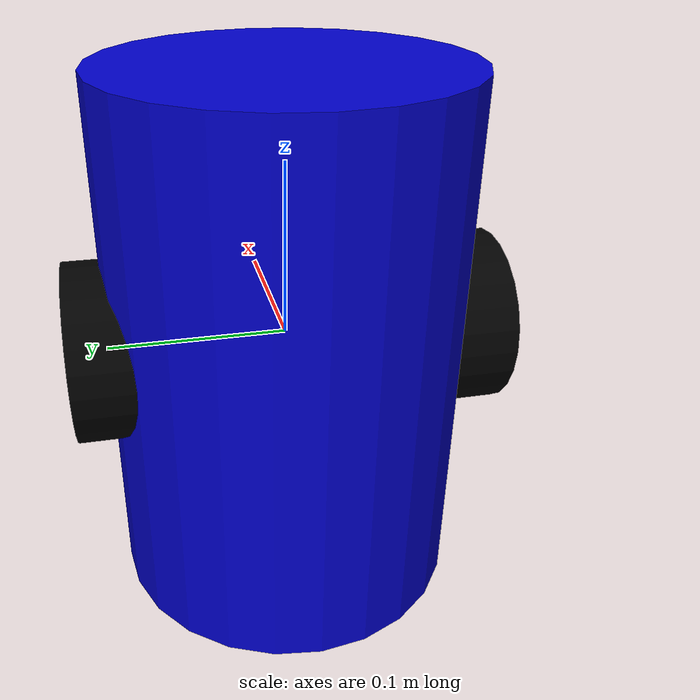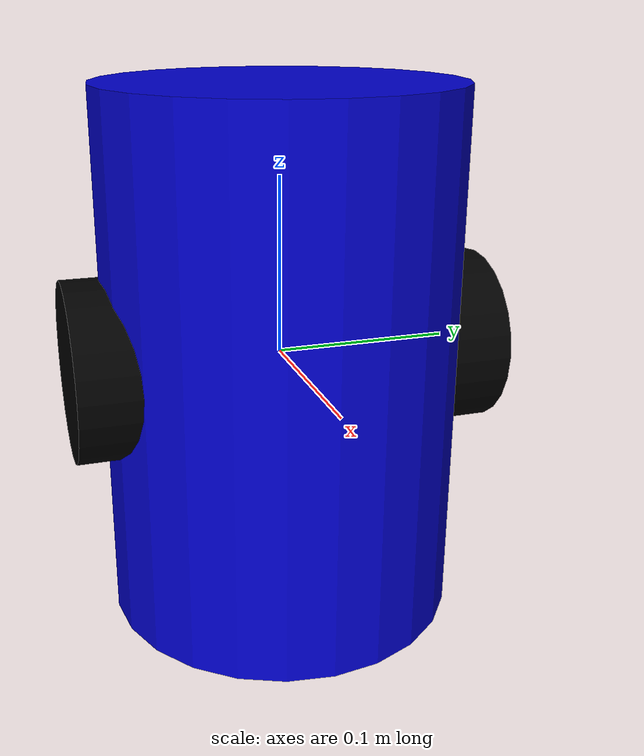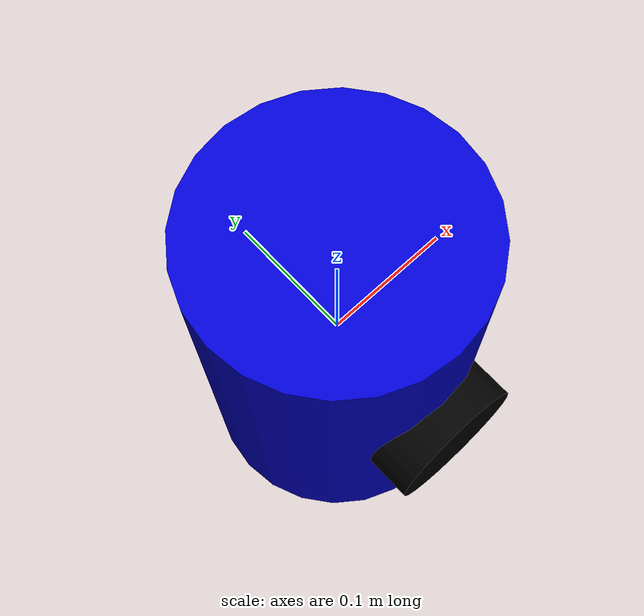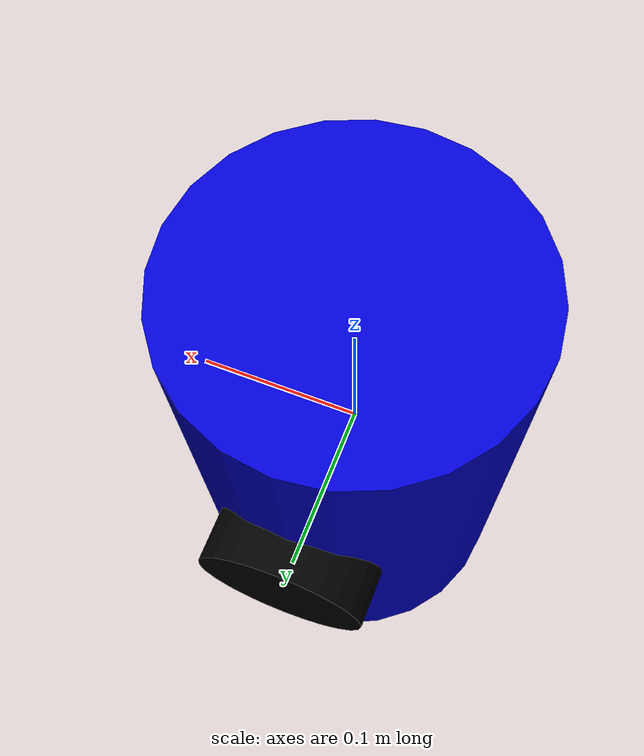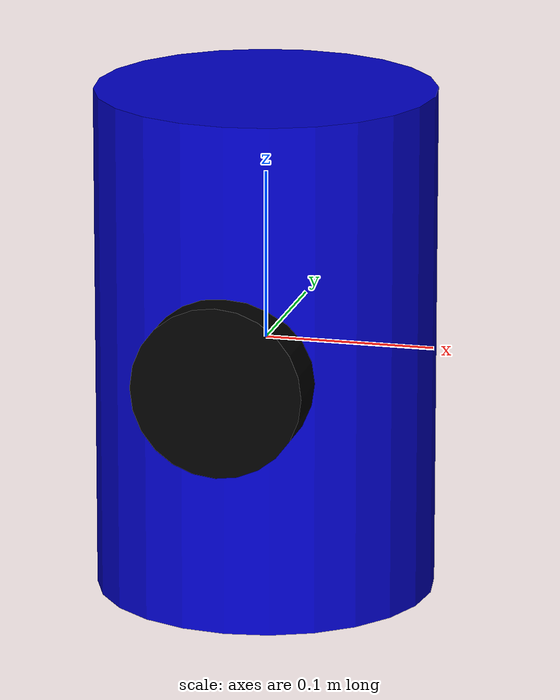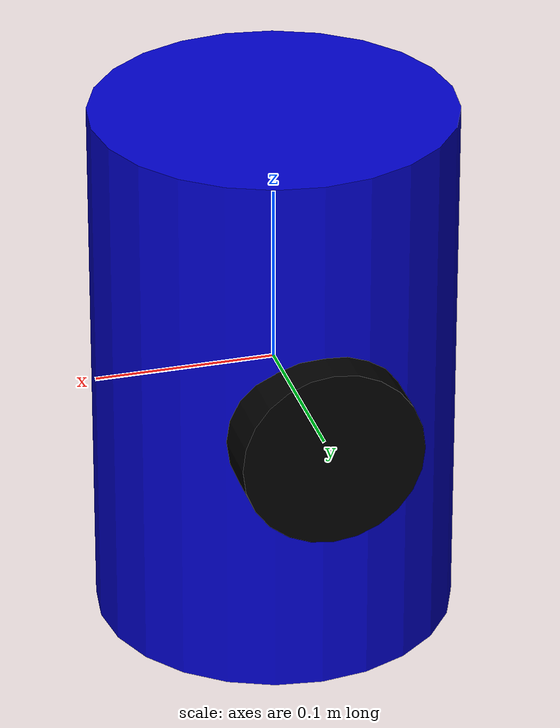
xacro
<?xml version="1.0"?>
<!-- | simple robot testing                                                            | -->
<robot xmlns:xacro="http://www.ros.org/wiki/xacro" name="simple_robot">

  <xacro:arg name="robot_name" default="robot"/>
  <xacro:arg name="robot_color" default="Blue"/>

  <!-- Robot properties -->
  <xacro:property name="robot_radius" value="0.1"/>
  <xacro:property name="robot_length" value="0.3"/>
  <xacro:property name="wheel_radius" value="0.05"/>
  <xacro:property name="wheel_thickness" value="0.04"/>
  <xacro:property name="wheel_separation" value="0.2"/>
  <xacro:property name="mass_chassis" value="1.0"/>
  <xacro:property name="mass_wheel" value="0.2"/>

  <!-- Colors -->
  <material name="Blue">
    <color rgba="0 0 0.8 1"/>
  </material>
  <material name="Red">
    <color rgba="0.8 0 0 1"/>
  </material>
  <material name="Green">
    <color rgba="0 0.8 0 1"/>
  </material>
  <material name="Yellow">
    <color rgba="0.8 0.8 0 1"/>
  </material>
  <material name="Black">
    <color rgba="0 0 0 1"/>
  </material>

  <!-- Base Link -->
  <link name="$(arg robot_name)/base_link">
    <visual>
      <geometry>
        <cylinder length="${robot_length}" radius="${robot_radius}"/>
      </geometry>
      <material name="$(arg robot_color)"/>
    </visual>
    <collision>
      <geometry>
        <cylinder length="${robot_length}" radius="${robot_radius}"/>
      </geometry>
    </collision>
    <inertial>
      <mass value="${mass_chassis}"/>
      <inertia ixx="${mass_chassis * (3 * robot_radius * robot_radius + robot_length * robot_length) / 12}"
               ixy="0.0" ixz="0.0"
               iyy="${mass_chassis * (3 * robot_radius * robot_radius + robot_length * robot_length) / 12}"
               iyz="0.0"
               izz="${mass_chassis * robot_radius * robot_radius / 2}"/>
    </inertial>
  </link>

  <!-- Left Wheel Link -->
  <link name="$(arg robot_name)/wheel_left_link">
    <visual>
      <geometry>
        <cylinder length="${wheel_thickness}" radius="${wheel_radius}"/>
      </geometry>
      <material name="Black"/>
    </visual>
    <collision>
      <geometry>
        <cylinder length="${wheel_thickness}" radius="${wheel_radius}"/>
      </geometry>
    </collision>
    <inertial>
      <mass value="${mass_wheel}"/>
      <inertia ixx="${mass_wheel * (3 * wheel_radius * wheel_radius + wheel_thickness * wheel_thickness) / 12}"
               ixy="0.0" ixz="0.0"
               iyy="${mass_wheel * (3 * wheel_radius * wheel_radius + wheel_thickness * wheel_thickness) / 12}"
               iyz="0.0"
               izz="${mass_wheel * wheel_radius * wheel_radius / 2}"/>
    </inertial>
  </link>

  <!-- Right Wheel Link -->
  <link name="$(arg robot_name)/wheel_right_link">
    <visual>
      <geometry>
        <cylinder length="${wheel_thickness}" radius="${wheel_radius}"/>
      </geometry>
      <material name="Black"/>
    </visual>
    <collision>
      <geometry>
        <cylinder length="${wheel_thickness}" radius="${wheel_radius}"/>
      </geometry>
    </collision>
    <inertial>
      <mass value="${mass_wheel}"/>
      <inertia ixx="${mass_wheel * (3 * wheel_radius * wheel_radius + wheel_thickness * wheel_thickness) / 12}"
               ixy="0.0" ixz="0.0"
               iyy="${mass_wheel * (3 * wheel_radius * wheel_radius + wheel_thickness * wheel_thickness) / 12}"
               iyz="0.0"
               izz="${mass_wheel * wheel_radius * wheel_radius / 2}"/>
    </inertial>
  </link>

  <!-- Left Wheel Joint -->
  <joint name="$(arg robot_name)/wheel_left_joint" type="continuous">
    <parent link="$(arg robot_name)/base_link"/>
    <child link="$(arg robot_name)/wheel_left_link"/>
    <origin xyz="0 ${wheel_separation/2} 0" rpy="${-pi/2} 0 0"/>
    <axis xyz="0 0 1"/>
  </joint>

  <!-- Right Wheel Joint -->
  <joint name="$(arg robot_name)/wheel_right_joint" type="continuous">
    <parent link="$(arg robot_name)/base_link"/>
    <child link="$(arg robot_name)/wheel_right_link"/>
    <origin xyz="0 ${-wheel_separation/2} 0" rpy="${-pi/2} 0 0"/>
    <axis xyz="0 0 1"/>
  </joint>

  <!-- Gazebo plugins -->
  <gazebo>
    <plugin name="$(arg robot_name)_diff_drive" filename="libgazebo_ros_diff_drive.so">
      <update_rate>30</update_rate>
      <left_joint>$(arg robot_name)/wheel_left_joint</left_joint>
      <right_joint>$(arg robot_name)/wheel_right_joint</right_joint>
      <wheel_separation>${wheel_separation}</wheel_separation>
      <wheel_diameter>${2*wheel_radius}</wheel_diameter>
      <max_wheel_acceleration>1.0</max_wheel_acceleration>
      <max_wheel_torque>20</max_wheel_torque>
      <publish_odom>true</publish_odom>
      <publish_odom_tf>true</publish_odom_tf>
      <publish_wheel_tf>true</publish_wheel_tf>
      <odometry_frame>$(arg robot_name)/odom</odometry_frame>
      <robot_base_frame>$(arg robot_name)/base_link</robot_base_frame>
      <odometry_topic>$(arg robot_name)/odom</odometry_topic>
      <cmd_vel_topic>$(arg robot_name)/cmd_vel</cmd_vel_topic>
    </plugin>
  </gazebo>

</robot>
